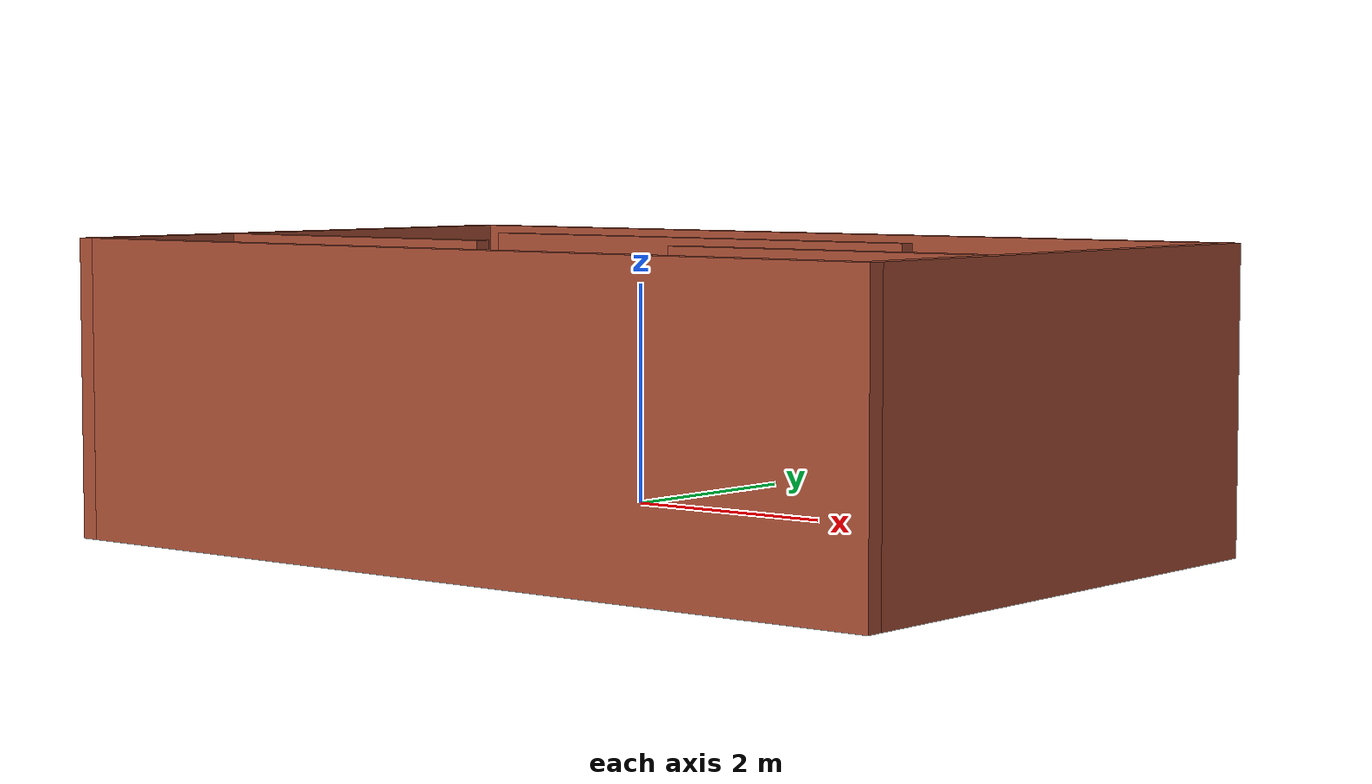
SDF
<?xml version='1.0'?>
<sdf version='1.7'>
  <model name='my_walls_2'>
    <pose>2.03333 -2.395 0 0 -0 0</pose>
    <link name='Wall_0'>
      <collision name='Wall_0_Collision'>
        <geometry>
          <box>
            <size>5 0.15 2.5</size>
          </box>
        </geometry>
        <pose>0 0 1.25 0 -0 0</pose>
      </collision>
      <visual name='Wall_0_Visual'>
        <pose>0 0 1.25 0 -0 0</pose>
        <geometry>
          <box>
            <size>5 0.15 2.5</size>
          </box>
        </geometry>
        <material>
          <script>
            <uri>file://media/materials/scripts/gazebo.material</uri>
            <name>Gazebo/Bricks</name>
          </script>
          <ambient>1 1 1 1</ambient>
        </material>
        <meta>
          <layer>0</layer>
        </meta>
      </visual>
      <pose>-3.92333 0 0 0 -0 -1.5708</pose>
    </link>
    <link name='Wall_11'>
      <collision name='Wall_11_Collision'>
        <geometry>
          <box>
            <size>4.25 0.15 2.5</size>
          </box>
        </geometry>
        <pose>0 0 1.25 0 -0 0</pose>
      </collision>
      <visual name='Wall_11_Visual'>
        <pose>0 0 1.25 0 -0 0</pose>
        <geometry>
          <box>
            <size>4.25 0.15 2.5</size>
          </box>
        </geometry>
        <material>
          <script>
            <uri>file://media/materials/scripts/gazebo.material</uri>
            <name>Gazebo/Bricks</name>
          </script>
          <ambient>1 1 1 1</ambient>
        </material>
        <meta>
          <layer>0</layer>
        </meta>
      </visual>
      <pose>-0.077268 0.732033 0 0 -0 0</pose>
    </link>
    <link name='Wall_2'>
      <collision name='Wall_2_Collision'>
        <geometry>
          <box>
            <size>8 0.15 2.5</size>
          </box>
        </geometry>
        <pose>0 0 1.25 0 -0 0</pose>
      </collision>
      <visual name='Wall_2_Visual'>
        <pose>0 0 1.25 0 -0 0</pose>
        <geometry>
          <box>
            <size>8 0.15 2.5</size>
          </box>
        </geometry>
        <material>
          <script>
            <uri>file://media/materials/scripts/gazebo.material</uri>
            <name>Gazebo/Bricks</name>
          </script>
          <ambient>1 1 1 1</ambient>
        </material>
        <meta>
          <layer>0</layer>
        </meta>
      </visual>
      <pose>0.001671 2.425 0 0 -0 0</pose>
    </link>
    <link name='Wall_3'>
      <collision name='Wall_3_Collision'>
        <geometry>
          <box>
            <size>5 0.15 2.5</size>
          </box>
        </geometry>
        <pose>0 0 1.25 0 -0 0</pose>
      </collision>
      <visual name='Wall_3_Visual'>
        <pose>0 0 1.25 0 -0 0</pose>
        <geometry>
          <box>
            <size>5 0.15 2.5</size>
          </box>
        </geometry>
        <material>
          <script>
            <uri>file://media/materials/scripts/gazebo.material</uri>
            <name>Gazebo/Bricks</name>
          </script>
          <ambient>1 1 1 1</ambient>
        </material>
        <meta>
          <layer>0</layer>
        </meta>
      </visual>
      <pose>3.92667 0 0 0 -0 -1.5708</pose>
    </link>
    <link name='Wall_4'>
      <collision name='Wall_4_Collision'>
        <geometry>
          <box>
            <size>8 0.15 2.5</size>
          </box>
        </geometry>
        <pose>0 0 1.25 0 -0 0</pose>
      </collision>
      <visual name='Wall_4_Visual'>
        <pose>0 0 1.25 0 -0 0</pose>
        <geometry>
          <box>
            <size>8 0.15 2.5</size>
          </box>
        </geometry>
        <material>
          <script>
            <uri>file://media/materials/scripts/gazebo.material</uri>
            <name>Gazebo/Bricks</name>
          </script>
          <ambient>1 1 1 1</ambient>
        </material>
        <meta>
          <layer>0</layer>
        </meta>
      </visual>
      <pose>0.001671 -2.425 0 0 -0 3.14159</pose>
    </link>
    <link name='Wall_6'>
      <collision name='Wall_6_Collision'>
        <geometry>
          <box>
            <size>3 0.15 2.5</size>
          </box>
        </geometry>
        <pose>0 0 1.25 0 -0 0</pose>
      </collision>
      <visual name='Wall_6_Visual'>
        <pose>0 0 1.25 0 -0 0</pose>
        <geometry>
          <box>
            <size>3 0.15 2.5</size>
          </box>
        </geometry>
        <material>
          <script>
            <uri>file://media/materials/scripts/gazebo.material</uri>
            <name>Gazebo/Bricks</name>
          </script>
          <ambient>1 1 1 1</ambient>
        </material>
        <meta>
          <layer>0</layer>
        </meta>
      </visual>
      <pose>-2.50167 -0.849677 0 0 -0 0</pose>
    </link>
    <link name='Wall_8'>
      <collision name='Wall_8_Collision'>
        <geometry>
          <box>
            <size>3 0.15 2.5</size>
          </box>
        </geometry>
        <pose>0 0 1.25 0 -0 0</pose>
      </collision>
      <visual name='Wall_8_Visual'>
        <pose>0 0 1.25 0 -0 0</pose>
        <geometry>
          <box>
            <size>3 0.15 2.5</size>
          </box>
        </geometry>
        <material>
          <script>
            <uri>file://media/materials/scripts/gazebo.material</uri>
            <name>Gazebo/Bricks</name>
          </script>
          <ambient>1 1 1 1</ambient>
        </material>
        <meta>
          <layer>0</layer>
        </meta>
      </visual>
      <pose>2.48083 -0.849677 0 0 -0 3.14159</pose>
    </link>
    <static>1</static>
  </model>
</sdf>
